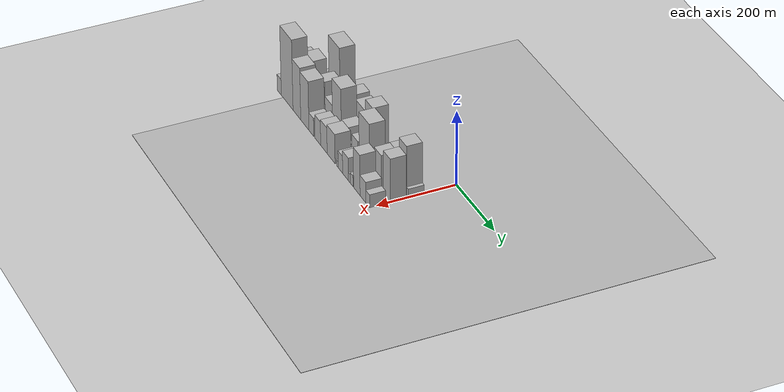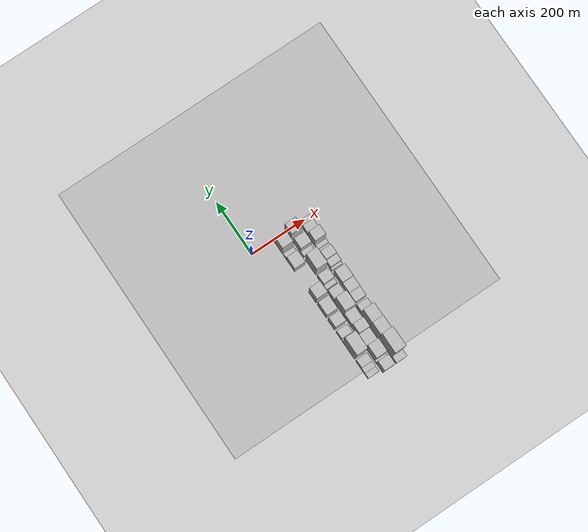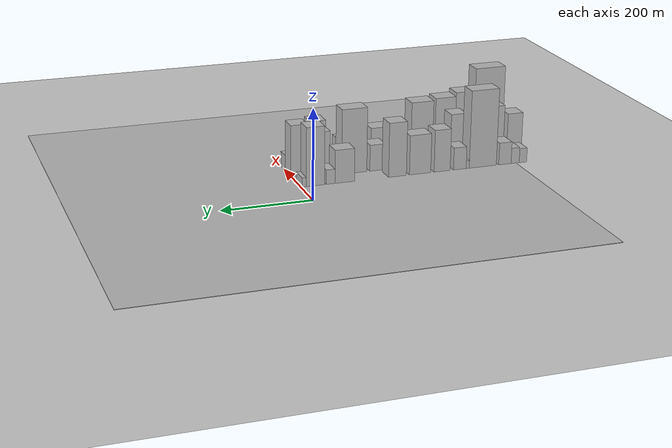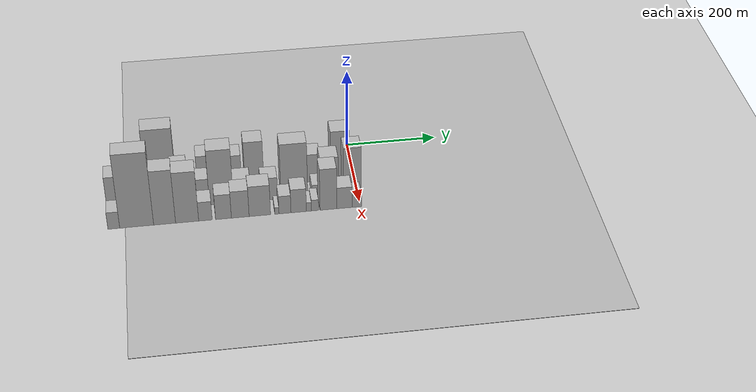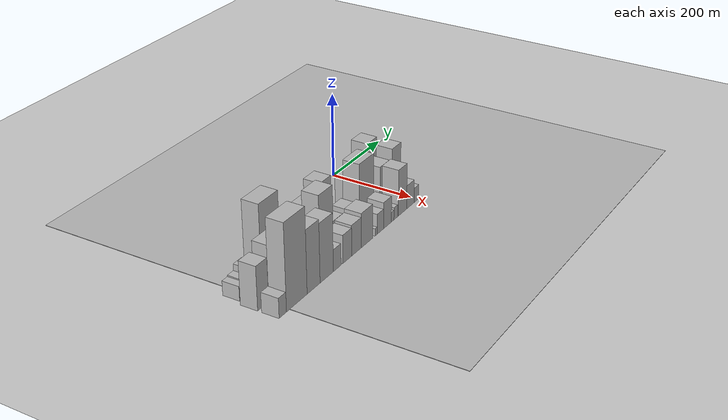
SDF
<sdf version="1.6">
 <world name="default">
  <include><name>ground_plane_1</name><uri>model://HANNAS_ground_plane</uri></include>
  <include>
   <name>ground_plane_2</name>
   <uri>model://HANNAS_ground_plane</uri>
   <pose>100 0 0  0 0 0</pose>
  </include>
  <model name="building_1">
   <static>1</static>
   <pose>100.0000 -516.9672 0 0.000000 0.000000 0.000000</pose>
   <link name="link">
    <pose>0 0 16.50 0 0 0</pose>
    <collision name="collision"><geometry><box><size>40.0000 18.0656 33.0000</size></box></geometry></collision>
    <visual name="visual">
     <cast_shadows>0</cast_shadows>
     <geometry><box><size>40.0000 18.0656 33.0000</size></box></geometry>
     <material>
      <script>
       <uri>model://HANNAS_wall/materials/scripts</uri>
       <uri>model://HANNAS_wall/materials/textures</uri>
       <name>vrc/HANNAS_wall</name>
      </script>
     </material>
    </visual>
   </link>
  </model>
  <model name="building_2">
   <static>1</static>
   <pose>100.0000 -498.0871 0 0.000000 0.000000 0.000000</pose>
   <link name="link">
    <pose>0 0 18.00 0 0 0</pose>
    <collision name="collision"><geometry><box><size>40.0000 19.6946 36.0000</size></box></geometry></collision>
    <visual name="visual">
     <cast_shadows>0</cast_shadows>
     <geometry><box><size>40.0000 19.6946 36.0000</size></box></geometry>
     <material>
      <script>
       <uri>model://HANNAS_wall/materials/scripts</uri>
       <uri>model://HANNAS_wall/materials/textures</uri>
       <name>vrc/HANNAS_wall</name>
      </script>
     </material>
    </visual>
   </link>
  </model>
  <model name="building_3">
   <static>1</static>
   <pose>100.0000 -473.3525 0 0.000000 0.000000 0.000000</pose>
   <link name="link">
    <pose>0 0 25.50 0 0 0</pose>
    <collision name="collision"><geometry><box><size>40.0000 29.7748 51.0000</size></box></geometry></collision>
    <visual name="visual">
     <cast_shadows>0</cast_shadows>
     <geometry><box><size>40.0000 29.7748 51.0000</size></box></geometry>
     <material>
      <script>
       <uri>model://HANNAS_wall/materials/scripts</uri>
       <uri>model://HANNAS_wall/materials/textures</uri>
       <name>vrc/HANNAS_wall</name>
      </script>
     </material>
    </visual>
   </link>
  </model>
  <model name="building_4">
   <static>1</static>
   <pose>100.0000 -420.0573 0 0.000000 0.000000 0.000000</pose>
   <link name="link">
    <pose>0 0 88.50 0 0 0</pose>
    <collision name="collision"><geometry><box><size>40.0000 64.8154 177.0000</size></box></geometry></collision>
    <visual name="visual">
     <cast_shadows>0</cast_shadows>
     <geometry><box><size>40.0000 64.8154 177.0000</size></box></geometry>
     <material>
      <script>
       <uri>model://HANNAS_wall/materials/scripts</uri>
       <uri>model://HANNAS_wall/materials/textures</uri>
       <name>vrc/HANNAS_wall</name>
      </script>
     </material>
    </visual>
   </link>
  </model>
  <model name="building_5">
   <static>1</static>
   <pose>100.0000 -383.9254 0 0.000000 0.000000 0.000000</pose>
   <link name="link">
    <pose>0 0 9.00 0 0 0</pose>
    <collision name="collision"><geometry><box><size>40.0000 7.4484 18.0000</size></box></geometry></collision>
    <visual name="visual">
     <cast_shadows>0</cast_shadows>
     <geometry><box><size>40.0000 7.4484 18.0000</size></box></geometry>
     <material>
      <script>
       <uri>model://HANNAS_wall/materials/scripts</uri>
       <uri>model://HANNAS_wall/materials/textures</uri>
       <name>vrc/HANNAS_wall</name>
      </script>
     </material>
    </visual>
   </link>
  </model>
  <model name="building_6">
   <static>1</static>
   <pose>100.0000 -365.1987 0 0.000000 0.000000 0.000000</pose>
   <link name="link">
    <pose>0 0 25.50 0 0 0</pose>
    <collision name="collision"><geometry><box><size>40.0000 30.0050 51.0000</size></box></geometry></collision>
    <visual name="visual">
     <cast_shadows>0</cast_shadows>
     <geometry><box><size>40.0000 30.0050 51.0000</size></box></geometry>
     <material>
      <script>
       <uri>model://HANNAS_wall/materials/scripts</uri>
       <uri>model://HANNAS_wall/materials/textures</uri>
       <name>vrc/HANNAS_wall</name>
      </script>
     </material>
    </visual>
   </link>
  </model>
  <model name="building_7">
   <static>1</static>
   <pose>100.0000 -323.3096 0 0.000000 0.000000 0.000000</pose>
   <link name="link">
    <pose>0 0 48.00 0 0 0</pose>
    <collision name="collision"><geometry><box><size>40.0000 37.7732 96.0000</size></box></geometry></collision>
    <visual name="visual">
     <cast_shadows>0</cast_shadows>
     <geometry><box><size>40.0000 37.7732 96.0000</size></box></geometry>
     <material>
      <script>
       <uri>model://HANNAS_wall/materials/scripts</uri>
       <uri>model://HANNAS_wall/materials/textures</uri>
       <name>vrc/HANNAS_wall</name>
      </script>
     </material>
    </visual>
   </link>
  </model>
  <model name="building_8">
   <static>1</static>
   <pose>100.0000 -271.5236 0 0.000000 0.000000 0.000000</pose>
   <link name="link">
    <pose>0 0 45.00 0 0 0</pose>
    <collision name="collision"><geometry><box><size>40.0000 49.7988 90.0000</size></box></geometry></collision>
    <visual name="visual">
     <cast_shadows>0</cast_shadows>
     <geometry><box><size>40.0000 49.7988 90.0000</size></box></geometry>
     <material>
      <script>
       <uri>model://HANNAS_wall/materials/scripts</uri>
       <uri>model://HANNAS_wall/materials/textures</uri>
       <name>vrc/HANNAS_wall</name>
      </script>
     </material>
    </visual>
   </link>
  </model>
  <model name="building_9">
   <static>1</static>
   <pose>100.0000 -219.0494 0 0.000000 0.000000 0.000000</pose>
   <link name="link">
    <pose>0 0 61.50 0 0 0</pose>
    <collision name="collision"><geometry><box><size>40.0000 41.1495 123.0000</size></box></geometry></collision>
    <visual name="visual">
     <cast_shadows>0</cast_shadows>
     <geometry><box><size>40.0000 41.1495 123.0000</size></box></geometry>
     <material>
      <script>
       <uri>model://HANNAS_wall/materials/scripts</uri>
       <uri>model://HANNAS_wall/materials/textures</uri>
       <name>vrc/HANNAS_wall</name>
      </script>
     </material>
    </visual>
   </link>
  </model>
  <model name="building_10">
   <static>1</static>
   <pose>100.0000 -98.0714 0 0.000000 0.000000 0.000000</pose>
   <link name="link">
    <pose>0 0 37.50 0 0 0</pose>
    <collision name="collision"><geometry><box><size>40.0000 44.2688 75.0000</size></box></geometry></collision>
    <visual name="visual">
     <cast_shadows>0</cast_shadows>
     <geometry><box><size>40.0000 44.2688 75.0000</size></box></geometry>
     <material>
      <script>
       <uri>model://HANNAS_wall/materials/scripts</uri>
       <uri>model://HANNAS_wall/materials/textures</uri>
       <name>vrc/HANNAS_wall</name>
      </script>
     </material>
    </visual>
   </link>
  </model>
  <model name="building_11">
   <static>1</static>
   <pose>100.0000 -66.1817 0 0.000000 0.000000 0.000000</pose>
   <link name="link">
    <pose>0 0 16.50 0 0 0</pose>
    <collision name="collision"><geometry><box><size>40.0000 19.5107 33.0000</size></box></geometry></collision>
    <visual name="visual">
     <cast_shadows>0</cast_shadows>
     <geometry><box><size>40.0000 19.5107 33.0000</size></box></geometry>
     <material>
      <script>
       <uri>model://HANNAS_wall/materials/scripts</uri>
       <uri>model://HANNAS_wall/materials/textures</uri>
       <name>vrc/HANNAS_wall</name>
      </script>
     </material>
    </visual>
   </link>
  </model>
  <model name="building_12">
   <static>1</static>
   <pose>100.0000 -32.0604 0 0.000000 0.000000 0.000000</pose>
   <link name="link">
    <pose>0 0 66.00 0 0 0</pose>
    <collision name="collision"><geometry><box><size>40.0000 40.7318 132.0000</size></box></geometry></collision>
    <visual name="visual">
     <cast_shadows>0</cast_shadows>
     <geometry><box><size>40.0000 40.7318 132.0000</size></box></geometry>
     <material>
      <script>
       <uri>model://HANNAS_wall/materials/scripts</uri>
       <uri>model://HANNAS_wall/materials/textures</uri>
       <name>vrc/HANNAS_wall</name>
      </script>
     </material>
    </visual>
   </link>
  </model>
  <model name="building_13">
   <static>1</static>
   <pose>100.0000 -6.9172 0 0.000000 0.000000 0.000000</pose>
   <link name="link">
    <pose>0 0 10.50 0 0 0</pose>
    <collision name="collision"><geometry><box><size>40.0000 9.5545 21.0000</size></box></geometry></collision>
    <visual name="visual">
     <cast_shadows>0</cast_shadows>
     <geometry><box><size>40.0000 9.5545 21.0000</size></box></geometry>
     <material>
      <script>
       <uri>model://HANNAS_wall/materials/scripts</uri>
       <uri>model://HANNAS_wall/materials/textures</uri>
       <name>vrc/HANNAS_wall</name>
      </script>
     </material>
    </visual>
   </link>
  </model>
  <model name="building_29">
   <static>1</static>
   <pose>149.0000 -517.9019 0 0.000000 0.000000 0.000000</pose>
   <link name="link">
    <pose>0 0 49.50 0 0 0</pose>
    <collision name="collision"><geometry><box><size>40.0000 36.1962 99.0000</size></box></geometry></collision>
    <visual name="visual">
     <cast_shadows>0</cast_shadows>
     <geometry><box><size>40.0000 36.1962 99.0000</size></box></geometry>
     <material>
      <script>
       <uri>model://HANNAS_wall/materials/scripts</uri>
       <uri>model://HANNAS_wall/materials/textures</uri>
       <name>vrc/HANNAS_wall</name>
      </script>
     </material>
    </visual>
   </link>
  </model>
  <model name="building_30">
   <static>1</static>
   <pose>149.0000 -495.4424 0 0.000000 0.000000 0.000000</pose>
   <link name="link">
    <pose>0 0 9.00 0 0 0</pose>
    <collision name="collision"><geometry><box><size>40.0000 8.7228 18.0000</size></box></geometry></collision>
    <visual name="visual">
     <cast_shadows>0</cast_shadows>
     <geometry><box><size>40.0000 8.7228 18.0000</size></box></geometry>
     <material>
      <script>
       <uri>model://HANNAS_wall/materials/scripts</uri>
       <uri>model://HANNAS_wall/materials/textures</uri>
       <name>vrc/HANNAS_wall</name>
      </script>
     </material>
    </visual>
   </link>
  </model>
  <model name="building_31">
   <static>1</static>
   <pose>149.0000 -467.1126 0 0.000000 0.000000 0.000000</pose>
   <link name="link">
    <pose>0 0 60.00 0 0 0</pose>
    <collision name="collision"><geometry><box><size>40.0000 47.9369 120.0000</size></box></geometry></collision>
    <visual name="visual">
     <cast_shadows>0</cast_shadows>
     <geometry><box><size>40.0000 47.9369 120.0000</size></box></geometry>
     <material>
      <script>
       <uri>model://HANNAS_wall/materials/scripts</uri>
       <uri>model://HANNAS_wall/materials/textures</uri>
       <name>vrc/HANNAS_wall</name>
      </script>
     </material>
    </visual>
   </link>
  </model>
  <model name="building_32">
   <static>1</static>
   <pose>149.0000 -420.7778 0 0.000000 0.000000 0.000000</pose>
   <link name="link">
    <pose>0 0 37.50 0 0 0</pose>
    <collision name="collision"><geometry><box><size>40.0000 44.7326 75.0000</size></box></geometry></collision>
    <visual name="visual">
     <cast_shadows>0</cast_shadows>
     <geometry><box><size>40.0000 44.7326 75.0000</size></box></geometry>
     <material>
      <script>
       <uri>model://HANNAS_wall/materials/scripts</uri>
       <uri>model://HANNAS_wall/materials/textures</uri>
       <name>vrc/HANNAS_wall</name>
      </script>
     </material>
    </visual>
   </link>
  </model>
  <model name="building_33">
   <static>1</static>
   <pose>149.0000 -380.7269 0 0.000000 0.000000 0.000000</pose>
   <link name="link">
    <pose>0 0 55.50 0 0 0</pose>
    <collision name="collision"><geometry><box><size>40.0000 35.3693 111.0000</size></box></geometry></collision>
    <visual name="visual">
     <cast_shadows>0</cast_shadows>
     <geometry><box><size>40.0000 35.3693 111.0000</size></box></geometry>
     <material>
      <script>
       <uri>model://HANNAS_wall/materials/scripts</uri>
       <uri>model://HANNAS_wall/materials/textures</uri>
       <name>vrc/HANNAS_wall</name>
      </script>
     </material>
    </visual>
   </link>
  </model>
  <model name="building_34">
   <static>1</static>
   <pose>149.0000 -341.5918 0 0.000000 0.000000 0.000000</pose>
   <link name="link">
    <pose>0 0 36.00 0 0 0</pose>
    <collision name="collision"><geometry><box><size>40.0000 42.9008 72.0000</size></box></geometry></collision>
    <visual name="visual">
     <cast_shadows>0</cast_shadows>
     <geometry><box><size>40.0000 42.9008 72.0000</size></box></geometry>
     <material>
      <script>
       <uri>model://HANNAS_wall/materials/scripts</uri>
       <uri>model://HANNAS_wall/materials/textures</uri>
       <name>vrc/HANNAS_wall</name>
      </script>
     </material>
    </visual>
   </link>
  </model>
  <model name="building_35">
   <static>1</static>
   <pose>149.0000 -294.4641 0 0.000000 0.000000 0.000000</pose>
   <link name="link">
    <pose>0 0 73.50 0 0 0</pose>
    <collision name="collision"><geometry><box><size>40.0000 51.3547 147.0000</size></box></geometry></collision>
    <visual name="visual">
     <cast_shadows>0</cast_shadows>
     <geometry><box><size>40.0000 51.3547 147.0000</size></box></geometry>
     <material>
      <script>
       <uri>model://HANNAS_wall/materials/scripts</uri>
       <uri>model://HANNAS_wall/materials/textures</uri>
       <name>vrc/HANNAS_wall</name>
      </script>
     </material>
    </visual>
   </link>
  </model>
  <model name="building_36">
   <static>1</static>
   <pose>149.0000 -250.0624 0 0.000000 0.000000 0.000000</pose>
   <link name="link">
    <pose>0 0 31.50 0 0 0</pose>
    <collision name="collision"><geometry><box><size>40.0000 37.4487 63.0000</size></box></geometry></collision>
    <visual name="visual">
     <cast_shadows>0</cast_shadows>
     <geometry><box><size>40.0000 37.4487 63.0000</size></box></geometry>
     <material>
      <script>
       <uri>model://HANNAS_wall/materials/scripts</uri>
       <uri>model://HANNAS_wall/materials/textures</uri>
       <name>vrc/HANNAS_wall</name>
      </script>
     </material>
    </visual>
   </link>
  </model>
  <model name="building_37">
   <static>1</static>
   <pose>149.0000 -217.0985 0 0.000000 0.000000 0.000000</pose>
   <link name="link">
    <pose>0 0 15.00 0 0 0</pose>
    <collision name="collision"><geometry><box><size>40.0000 16.4791 30.0000</size></box></geometry></collision>
    <visual name="visual">
     <cast_shadows>0</cast_shadows>
     <geometry><box><size>40.0000 16.4791 30.0000</size></box></geometry>
     <material>
      <script>
       <uri>model://HANNAS_wall/materials/scripts</uri>
       <uri>model://HANNAS_wall/materials/textures</uri>
       <name>vrc/HANNAS_wall</name>
      </script>
     </material>
    </visual>
   </link>
  </model>
  <model name="building_38">
   <static>1</static>
   <pose>149.0000 -191.1011 0 0.000000 0.000000 0.000000</pose>
   <link name="link">
    <pose>0 0 30.00 0 0 0</pose>
    <collision name="collision"><geometry><box><size>40.0000 35.5157 60.0000</size></box></geometry></collision>
    <visual name="visual">
     <cast_shadows>0</cast_shadows>
     <geometry><box><size>40.0000 35.5157 60.0000</size></box></geometry>
     <material>
      <script>
       <uri>model://HANNAS_wall/materials/scripts</uri>
       <uri>model://HANNAS_wall/materials/textures</uri>
       <name>vrc/HANNAS_wall</name>
      </script>
     </material>
    </visual>
   </link>
  </model>
  <model name="building_39">
   <static>1</static>
   <pose>149.0000 -137.4377 0 0.000000 0.000000 0.000000</pose>
   <link name="link">
    <pose>0 0 73.50 0 0 0</pose>
    <collision name="collision"><geometry><box><size>40.0000 57.8110 147.0000</size></box></geometry></collision>
    <visual name="visual">
     <cast_shadows>0</cast_shadows>
     <geometry><box><size>40.0000 57.8110 147.0000</size></box></geometry>
     <material>
      <script>
       <uri>model://HANNAS_wall/materials/scripts</uri>
       <uri>model://HANNAS_wall/materials/textures</uri>
       <name>vrc/HANNAS_wall</name>
      </script>
     </material>
    </visual>
   </link>
  </model>
  <model name="building_40">
   <static>1</static>
   <pose>149.0000 -90.5418 0 0.000000 0.000000 0.000000</pose>
   <link name="link">
    <pose>0 0 15.00 0 0 0</pose>
    <collision name="collision"><geometry><box><size>40.0000 17.9808 30.0000</size></box></geometry></collision>
    <visual name="visual">
     <cast_shadows>0</cast_shadows>
     <geometry><box><size>40.0000 17.9808 30.0000</size></box></geometry>
     <material>
      <script>
       <uri>model://HANNAS_wall/materials/scripts</uri>
       <uri>model://HANNAS_wall/materials/textures</uri>
       <name>vrc/HANNAS_wall</name>
      </script>
     </material>
    </visual>
   </link>
  </model>
  <model name="building_41">
   <static>1</static>
   <pose>149.0000 -61.8562 0 0.000000 0.000000 0.000000</pose>
   <link name="link">
    <pose>0 0 51.00 0 0 0</pose>
    <collision name="collision"><geometry><box><size>40.0000 39.3904 102.0000</size></box></geometry></collision>
    <visual name="visual">
     <cast_shadows>0</cast_shadows>
     <geometry><box><size>40.0000 39.3904 102.0000</size></box></geometry>
     <material>
      <script>
       <uri>model://HANNAS_wall/materials/scripts</uri>
       <uri>model://HANNAS_wall/materials/textures</uri>
       <name>vrc/HANNAS_wall</name>
      </script>
     </material>
    </visual>
   </link>
  </model>
  <model name="building_42">
   <static>1</static>
   <pose>149.0000 -37.9044 0 0.000000 0.000000 0.000000</pose>
   <link name="link">
    <pose>0 0 9.00 0 0 0</pose>
    <collision name="collision"><geometry><box><size>40.0000 8.5134 18.0000</size></box></geometry></collision>
    <visual name="visual">
     <cast_shadows>0</cast_shadows>
     <geometry><box><size>40.0000 8.5134 18.0000</size></box></geometry>
     <material>
      <script>
       <uri>model://HANNAS_wall/materials/scripts</uri>
       <uri>model://HANNAS_wall/materials/textures</uri>
       <name>vrc/HANNAS_wall</name>
      </script>
     </material>
    </visual>
   </link>
  </model>
  <model name="building_43">
   <static>1</static>
   <pose>149.0000 -11.5895 0 0.000000 0.000000 0.000000</pose>
   <link name="link">
    <pose>0 0 61.50 0 0 0</pose>
    <collision name="collision"><geometry><box><size>40.0000 38.1163 123.0000</size></box></geometry></collision>
    <visual name="visual">
     <cast_shadows>0</cast_shadows>
     <geometry><box><size>40.0000 38.1163 123.0000</size></box></geometry>
     <material>
      <script>
       <uri>model://HANNAS_wall/materials/scripts</uri>
       <uri>model://HANNAS_wall/materials/textures</uri>
       <name>vrc/HANNAS_wall</name>
      </script>
     </material>
    </visual>
   </link>
  </model>
  <model name="building_59">
   <static>1</static>
   <pose>198.0000 -523.7480 0 0.000000 0.000000 0.000000</pose>
   <link name="link">
    <pose>0 0 22.50 0 0 0</pose>
    <collision name="collision"><geometry><box><size>40.0000 24.5040 45.0000</size></box></geometry></collision>
    <visual name="visual">
     <cast_shadows>0</cast_shadows>
     <geometry><box><size>40.0000 24.5040 45.0000</size></box></geometry>
     <material>
      <script>
       <uri>model://HANNAS_wall/materials/scripts</uri>
       <uri>model://HANNAS_wall/materials/textures</uri>
       <name>vrc/HANNAS_wall</name>
      </script>
     </material>
    </visual>
   </link>
  </model>
  <model name="building_60">
   <static>1</static>
   <pose>198.0000 -476.0242 0 0.000000 0.000000 0.000000</pose>
   <link name="link">
    <pose>0 0 97.50 0 0 0</pose>
    <collision name="collision"><geometry><box><size>40.0000 70.9437 195.0000</size></box></geometry></collision>
    <visual name="visual">
     <cast_shadows>0</cast_shadows>
     <geometry><box><size>40.0000 70.9437 195.0000</size></box></geometry>
     <material>
      <script>
       <uri>model://HANNAS_wall/materials/scripts</uri>
       <uri>model://HANNAS_wall/materials/textures</uri>
       <name>vrc/HANNAS_wall</name>
      </script>
     </material>
    </visual>
   </link>
  </model>
  <model name="building_61">
   <static>1</static>
   <pose>198.0000 -417.5375 0 0.000000 0.000000 0.000000</pose>
   <link name="link">
    <pose>0 0 72.00 0 0 0</pose>
    <collision name="collision"><geometry><box><size>40.0000 46.0296 144.0000</size></box></geometry></collision>
    <visual name="visual">
     <cast_shadows>0</cast_shadows>
     <geometry><box><size>40.0000 46.0296 144.0000</size></box></geometry>
     <material>
      <script>
       <uri>model://HANNAS_wall/materials/scripts</uri>
       <uri>model://HANNAS_wall/materials/textures</uri>
       <name>vrc/HANNAS_wall</name>
      </script>
     </material>
    </visual>
   </link>
  </model>
  <model name="building_62">
   <static>1</static>
   <pose>198.0000 -370.2326 0 0.000000 0.000000 0.000000</pose>
   <link name="link">
    <pose>0 0 67.50 0 0 0</pose>
    <collision name="collision"><geometry><box><size>40.0000 48.5803 135.0000</size></box></geometry></collision>
    <visual name="visual">
     <cast_shadows>0</cast_shadows>
     <geometry><box><size>40.0000 48.5803 135.0000</size></box></geometry>
     <material>
      <script>
       <uri>model://HANNAS_wall/materials/scripts</uri>
       <uri>model://HANNAS_wall/materials/textures</uri>
       <name>vrc/HANNAS_wall</name>
      </script>
     </material>
    </visual>
   </link>
  </model>
  <model name="building_63">
   <static>1</static>
   <pose>198.0000 -331.6505 0 0.000000 0.000000 0.000000</pose>
   <link name="link">
    <pose>0 0 25.50 0 0 0</pose>
    <collision name="collision"><geometry><box><size>40.0000 28.5839 51.0000</size></box></geometry></collision>
    <visual name="visual">
     <cast_shadows>0</cast_shadows>
     <geometry><box><size>40.0000 28.5839 51.0000</size></box></geometry>
     <material>
      <script>
       <uri>model://HANNAS_wall/materials/scripts</uri>
       <uri>model://HANNAS_wall/materials/textures</uri>
       <name>vrc/HANNAS_wall</name>
      </script>
     </material>
    </visual>
   </link>
  </model>
  <model name="building_64">
   <static>1</static>
   <pose>198.0000 -293.5854 0 0.000000 0.000000 0.000000</pose>
   <link name="link">
    <pose>0 0 33.00 0 0 0</pose>
    <collision name="collision"><geometry><box><size>40.0000 33.5462 66.0000</size></box></geometry></collision>
    <visual name="visual">
     <cast_shadows>0</cast_shadows>
     <geometry><box><size>40.0000 33.5462 66.0000</size></box></geometry>
     <material>
      <script>
       <uri>model://HANNAS_wall/materials/scripts</uri>
       <uri>model://HANNAS_wall/materials/textures</uri>
       <name>vrc/HANNAS_wall</name>
      </script>
     </material>
    </visual>
   </link>
  </model>
  <model name="building_65">
   <static>1</static>
   <pose>198.0000 -258.0170 0 0.000000 0.000000 0.000000</pose>
   <link name="link">
    <pose>0 0 36.00 0 0 0</pose>
    <collision name="collision"><geometry><box><size>40.0000 37.5907 72.0000</size></box></geometry></collision>
    <visual name="visual">
     <cast_shadows>0</cast_shadows>
     <geometry><box><size>40.0000 37.5907 72.0000</size></box></geometry>
     <material>
      <script>
       <uri>model://HANNAS_wall/materials/scripts</uri>
       <uri>model://HANNAS_wall/materials/textures</uri>
       <name>vrc/HANNAS_wall</name>
      </script>
     </material>
    </visual>
   </link>
  </model>
  <model name="building_66">
   <static>1</static>
   <pose>198.0000 -216.3862 0 0.000000 0.000000 0.000000</pose>
   <link name="link">
    <pose>0 0 40.50 0 0 0</pose>
    <collision name="collision"><geometry><box><size>40.0000 45.6708 81.0000</size></box></geometry></collision>
    <visual name="visual">
     <cast_shadows>0</cast_shadows>
     <geometry><box><size>40.0000 45.6708 81.0000</size></box></geometry>
     <material>
      <script>
       <uri>model://HANNAS_wall/materials/scripts</uri>
       <uri>model://HANNAS_wall/materials/textures</uri>
       <name>vrc/HANNAS_wall</name>
      </script>
     </material>
    </visual>
   </link>
  </model>
  <model name="building_67">
   <static>1</static>
   <pose>198.0000 -180.0678 0 0.000000 0.000000 0.000000</pose>
   <link name="link">
    <pose>0 0 9.00 0 0 0</pose>
    <collision name="collision"><geometry><box><size>40.0000 8.9661 18.0000</size></box></geometry></collision>
    <visual name="visual">
     <cast_shadows>0</cast_shadows>
     <geometry><box><size>40.0000 8.9661 18.0000</size></box></geometry>
     <material>
      <script>
       <uri>model://HANNAS_wall/materials/scripts</uri>
       <uri>model://HANNAS_wall/materials/textures</uri>
       <name>vrc/HANNAS_wall</name>
      </script>
     </material>
    </visual>
   </link>
  </model>
  <model name="building_68">
   <static>1</static>
   <pose>198.0000 -162.7740 0 0.000000 0.000000 0.000000</pose>
   <link name="link">
    <pose>0 0 24.00 0 0 0</pose>
    <collision name="collision"><geometry><box><size>40.0000 25.6216 48.0000</size></box></geometry></collision>
    <visual name="visual">
     <cast_shadows>0</cast_shadows>
     <geometry><box><size>40.0000 25.6216 48.0000</size></box></geometry>
     <material>
      <script>
       <uri>model://HANNAS_wall/materials/scripts</uri>
       <uri>model://HANNAS_wall/materials/textures</uri>
       <name>vrc/HANNAS_wall</name>
      </script>
     </material>
    </visual>
   </link>
  </model>
  <model name="building_69">
   <static>1</static>
   <pose>198.0000 -133.4810 0 0.000000 0.000000 0.000000</pose>
   <link name="link">
    <pose>0 0 31.50 0 0 0</pose>
    <collision name="collision"><geometry><box><size>40.0000 32.9643 63.0000</size></box></geometry></collision>
    <visual name="visual">
     <cast_shadows>0</cast_shadows>
     <geometry><box><size>40.0000 32.9643 63.0000</size></box></geometry>
     <material>
      <script>
       <uri>model://HANNAS_wall/materials/scripts</uri>
       <uri>model://HANNAS_wall/materials/textures</uri>
       <name>vrc/HANNAS_wall</name>
      </script>
     </material>
    </visual>
   </link>
  </model>
  <model name="building_70">
   <static>1</static>
   <pose>198.0000 -111.5546 0 0.000000 0.000000 0.000000</pose>
   <link name="link">
    <pose>0 0 12.00 0 0 0</pose>
    <collision name="collision"><geometry><box><size>40.0000 10.8884 24.0000</size></box></geometry></collision>
    <visual name="visual">
     <cast_shadows>0</cast_shadows>
     <geometry><box><size>40.0000 10.8884 24.0000</size></box></geometry>
     <material>
      <script>
       <uri>model://HANNAS_wall/materials/scripts</uri>
       <uri>model://HANNAS_wall/materials/textures</uri>
       <name>vrc/HANNAS_wall</name>
      </script>
     </material>
    </visual>
   </link>
  </model>
  <model name="building_71">
   <static>1</static>
   <pose>198.0000 -98.4554 0 0.000000 0.000000 0.000000</pose>
   <link name="link">
    <pose>0 0 15.00 0 0 0</pose>
    <collision name="collision"><geometry><box><size>40.0000 15.3101 30.0000</size></box></geometry></collision>
    <visual name="visual">
     <cast_shadows>0</cast_shadows>
     <geometry><box><size>40.0000 15.3101 30.0000</size></box></geometry>
     <material>
      <script>
       <uri>model://HANNAS_wall/materials/scripts</uri>
       <uri>model://HANNAS_wall/materials/textures</uri>
       <name>vrc/HANNAS_wall</name>
      </script>
     </material>
    </visual>
   </link>
  </model>
  <model name="building_72">
   <static>1</static>
   <pose>198.0000 -69.6904 0 0.000000 0.000000 0.000000</pose>
   <link name="link">
    <pose>0 0 55.50 0 0 0</pose>
    <collision name="collision"><geometry><box><size>40.0000 36.2199 111.0000</size></box></geometry></collision>
    <visual name="visual">
     <cast_shadows>0</cast_shadows>
     <geometry><box><size>40.0000 36.2199 111.0000</size></box></geometry>
     <material>
      <script>
       <uri>model://HANNAS_wall/materials/scripts</uri>
       <uri>model://HANNAS_wall/materials/textures</uri>
       <name>vrc/HANNAS_wall</name>
      </script>
     </material>
    </visual>
   </link>
  </model>
  <model name="building_73">
   <static>1</static>
   <pose>198.0000 -35.2761 0 0.000000 0.000000 0.000000</pose>
   <link name="link">
    <pose>0 0 28.50 0 0 0</pose>
    <collision name="collision"><geometry><box><size>40.0000 32.6088 57.0000</size></box></geometry></collision>
    <visual name="visual">
     <cast_shadows>0</cast_shadows>
     <geometry><box><size>40.0000 32.6088 57.0000</size></box></geometry>
     <material>
      <script>
       <uri>model://HANNAS_wall/materials/scripts</uri>
       <uri>model://HANNAS_wall/materials/textures</uri>
       <name>vrc/HANNAS_wall</name>
      </script>
     </material>
    </visual>
   </link>
  </model>
  <model name="building_74">
   <static>1</static>
   <pose>198.0000 -8.6324 0 0.000000 0.000000 0.000000</pose>
   <link name="link">
    <pose>0 0 18.00 0 0 0</pose>
    <collision name="collision"><geometry><box><size>40.0000 20.6786 36.0000</size></box></geometry></collision>
    <visual name="visual">
     <cast_shadows>0</cast_shadows>
     <geometry><box><size>40.0000 20.6786 36.0000</size></box></geometry>
     <material>
      <script>
       <uri>model://HANNAS_wall/materials/scripts</uri>
       <uri>model://HANNAS_wall/materials/textures</uri>
       <name>vrc/HANNAS_wall</name>
      </script>
     </material>
    </visual>
   </link>
  </model>
 </world>
</sdf>
